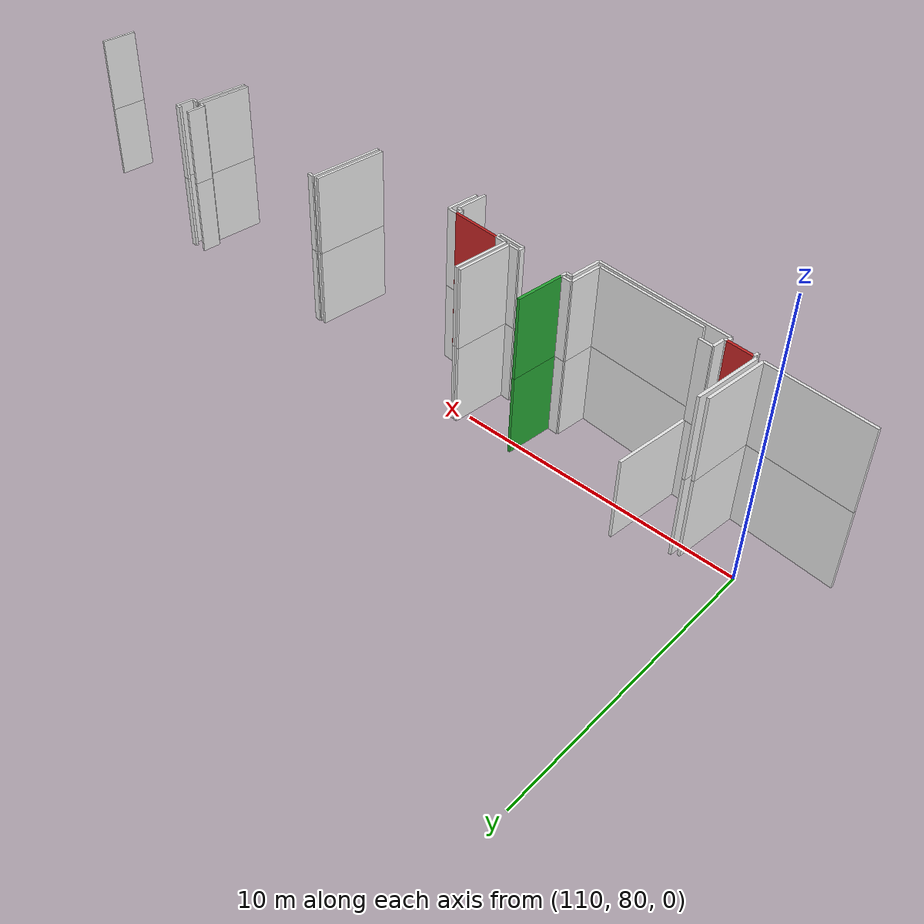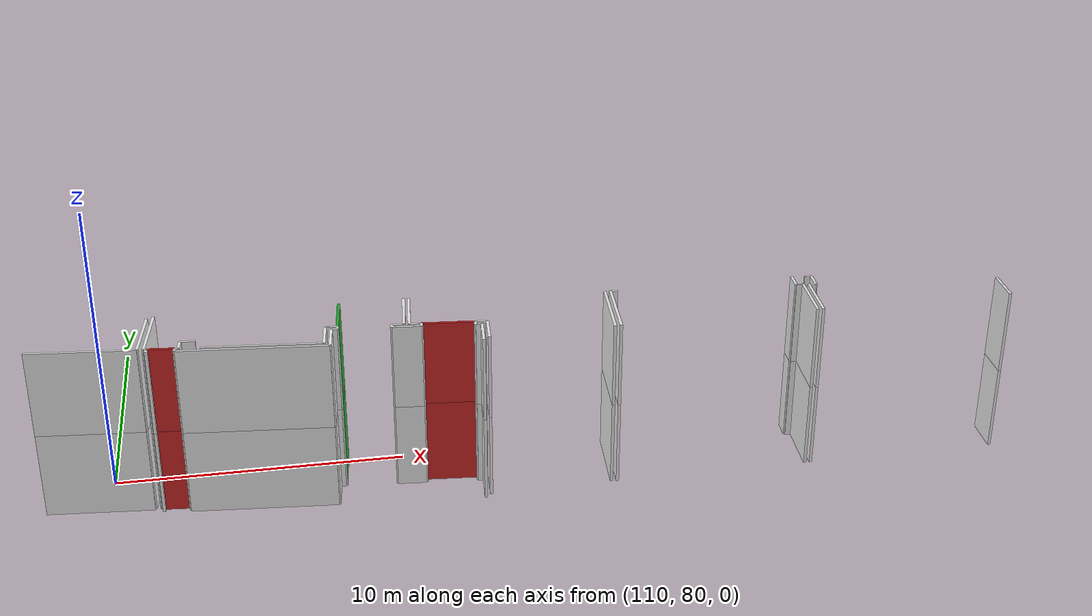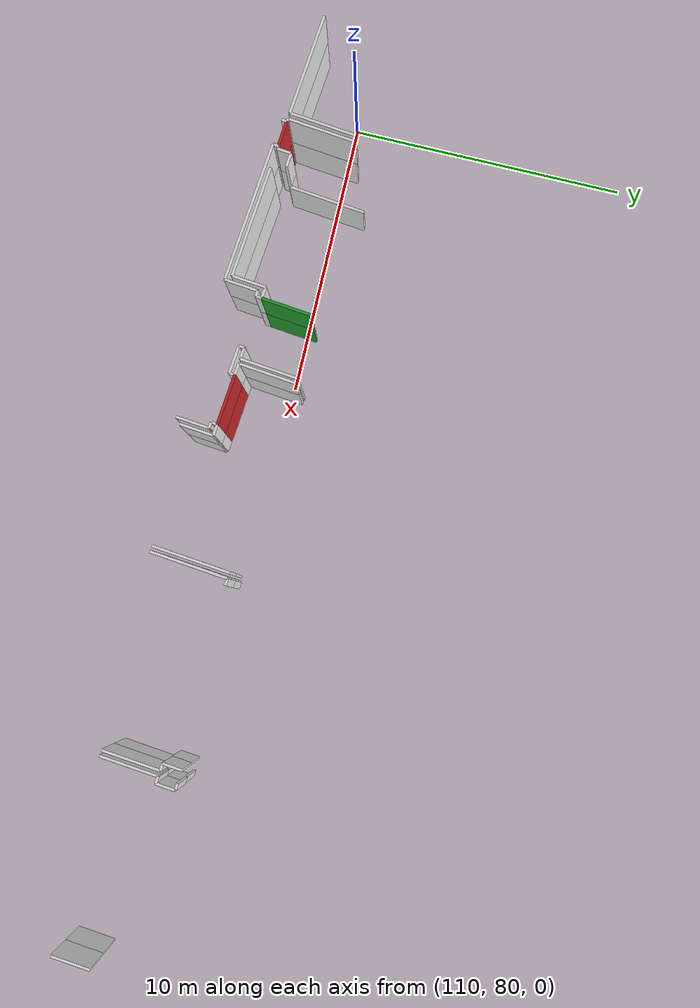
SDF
<sdf version="1.6">
 <world name="default">
  <model name="wall_112.2_77.9_1.5">
   <static>true</static>
   <pose>112.1699999999837 77.92500000004657 1.5 0 0 -0.09966865283695012</pose>
   <link name="link">
    <visual name="visual">
     <geometry><box><size>0.9044888059555555 0.1 3</size></box></geometry>
     <material>
      <script><uri>file://media/materials/scripts/gazebo.material</uri><name>Gazebo/Red</name></script>
     </material>
    </visual>
    <collision name="collision"><geometry><box><size>0.9044888059555555 0.1 3</size></box></geometry></collision>
   </link>
  </model>
  <model name="wall_121.5_78.2_1.5">
   <static>true</static>
   <pose>121.54000000000815 78.20999999996275 1.5 0 0 -0.09966865232787321</pose>
   <link name="link">
    <visual name="visual">
     <geometry><box><size>1.808977611760522 0.1 3</size></box></geometry>
     <material>
      <script><uri>file://media/materials/scripts/gazebo.material</uri><name>Gazebo/Red</name></script>
     </material>
    </visual>
    <collision name="collision"><geometry><box><size>1.808977611760522 0.1 3</size></box></geometry></collision>
   </link>
  </model>
  <model name="wall_118.0_79.5_1.5">
   <static>true</static>
   <pose>117.96999999985565 79.46499999985099 1.5 0 0 1.470574577181901</pose>
   <link name="link">
    <visual name="visual">
     <geometry><box><size>1.799027515083101 0.1 3</size></box></geometry>
     <material>
      <script><uri>file://media/materials/scripts/gazebo.material</uri><name>Gazebo/Green</name></script>
     </material>
    </visual>
    <collision name="collision"><geometry><box><size>1.799027515083101 0.1 3</size></box></geometry></collision>
   </link>
  </model>
  <model name="wall_112.2_77.9_4.5">
   <static>true</static>
   <pose>112.1699999999837 77.92500000004657 4.5 0 0 -0.09966865283695012</pose>
   <link name="link">
    <visual name="visual">
     <geometry><box><size>0.9044888059555555 0.1 3</size></box></geometry>
     <material>
      <script><uri>file://media/materials/scripts/gazebo.material</uri><name>Gazebo/Red</name></script>
     </material>
    </visual>
    <collision name="collision"><geometry><box><size>0.9044888059555555 0.1 3</size></box></geometry></collision>
   </link>
  </model>
  <model name="wall_121.5_78.2_4.5">
   <static>true</static>
   <pose>121.54000000000815 78.20999999996275 4.5 0 0 -0.09966865232787321</pose>
   <link name="link">
    <visual name="visual">
     <geometry><box><size>1.808977611760522 0.1 3</size></box></geometry>
     <material>
      <script><uri>file://media/materials/scripts/gazebo.material</uri><name>Gazebo/Red</name></script>
     </material>
    </visual>
    <collision name="collision"><geometry><box><size>1.808977611760522 0.1 3</size></box></geometry></collision>
   </link>
  </model>
  <model name="wall_118.0_79.5_4.5">
   <static>true</static>
   <pose>117.96999999985565 79.46499999985099 4.5 0 0 1.470574577181901</pose>
   <link name="link">
    <visual name="visual">
     <geometry><box><size>1.799027515083101 0.1 3</size></box></geometry>
     <material>
      <script><uri>file://media/materials/scripts/gazebo.material</uri><name>Gazebo/Green</name></script>
     </material>
    </visual>
    <collision name="collision"><geometry><box><size>1.799027515083101 0.1 3</size></box></geometry></collision>
   </link>
  </model>
  <model name="wall_134.3_78.0_1.5">
   <static>true</static>
   <pose>134.30499999999302 77.95999999996275 1.5 0 0 1.4701757469590804</pose>
   <link name="link">
    <visual name="visual">
     <geometry><box><size>2.090574083904777 0.1 3</size></box></geometry>
     <material>
      <script><uri>file://media/materials/scripts/gazebo.material</uri><name>Gazebo/White</name></script>
     </material>
    </visual>
    <collision name="collision"><geometry><box><size>2.090574083904777 0.1 3</size></box></geometry></collision>
   </link>
  </model>
  <model name="wall_134.5_79.0_1.5">
   <static>true</static>
   <pose>134.5349999999744 78.98500000010245 1.5 0 0 -0.11942892521040878</pose>
   <link name="link">
    <visual name="visual">
     <geometry><box><size>0.2517935662158716 0.1 3</size></box></geometry>
     <material>
      <script><uri>file://media/materials/scripts/gazebo.material</uri><name>Gazebo/White</name></script>
     </material>
    </visual>
    <collision name="collision"><geometry><box><size>0.2517935662158716 0.1 3</size></box></geometry></collision>
   </link>
  </model>
  <model name="wall_134.7_79.3_1.5">
   <static>true</static>
   <pose>134.69499999997788 79.32000000006519 1.5 0 0 1.4711276742543362</pose>
   <link name="link">
    <visual name="visual">
     <geometry><box><size>0.7034912932011471 0.1 3</size></box></geometry>
     <material>
      <script><uri>file://media/materials/scripts/gazebo.material</uri><name>Gazebo/White</name></script>
     </material>
    </visual>
    <collision name="collision"><geometry><box><size>0.7034912932011471 0.1 3</size></box></geometry></collision>
   </link>
  </model>
  <model name="wall_134.6_79.7_1.5">
   <static>true</static>
   <pose>134.60999999998603 79.67999999993481 1.5 0 0 3.0584514216210654</pose>
   <link name="link">
    <visual name="visual">
     <geometry><box><size>0.2408318915681117 0.1 3</size></box></geometry>
     <material>
      <script><uri>file://media/materials/scripts/gazebo.material</uri><name>Gazebo/White</name></script>
     </material>
    </visual>
    <collision name="collision"><geometry><box><size>0.2408318915681117 0.1 3</size></box></geometry></collision>
   </link>
  </model>
  <model name="wall_134.1_78.0_1.5">
   <static>true</static>
   <pose>134.10500000001048 77.97999999998137 1.5 0 0 1.4701757469313783</pose>
   <link name="link">
    <visual name="visual">
     <geometry><box><size>2.0905740839106244 0.1 3</size></box></geometry>
     <material>
      <script><uri>file://media/materials/scripts/gazebo.material</uri><name>Gazebo/White</name></script>
     </material>
    </visual>
    <collision name="collision"><geometry><box><size>2.0905740839106244 0.1 3</size></box></geometry></collision>
   </link>
  </model>
  <model name="wall_134.1_79.0_1.5">
   <static>true</static>
   <pose>134.08500000002095 79.03000000002794 1.5 0 0 3.061762667803524</pose>
   <link name="link">
    <visual name="visual">
     <geometry><box><size>0.25079872408117443 0.1 3</size></box></geometry>
     <material>
      <script><uri>file://media/materials/scripts/gazebo.material</uri><name>Gazebo/White</name></script>
     </material>
    </visual>
    <collision name="collision"><geometry><box><size>0.25079872408117443 0.1 3</size></box></geometry></collision>
   </link>
  </model>
  <model name="wall_134.0_79.4_1.5">
   <static>true</static>
   <pose>133.99500000002445 79.39000000013039 1.5 0 0 1.4711276743202006</pose>
   <link name="link">
    <visual name="visual">
     <geometry><box><size>0.7034912936644975 0.1 3</size></box></geometry>
     <material>
      <script><uri>file://media/materials/scripts/gazebo.material</uri><name>Gazebo/White</name></script>
     </material>
    </visual>
    <collision name="collision"><geometry><box><size>0.7034912936644975 0.1 3</size></box></geometry></collision>
   </link>
  </model>
  <model name="wall_127.6_79.7_1.5">
   <static>true</static>
   <pose>127.55499999999302 79.68500000005588 1.5 0 0 3.0221637265431807</pose>
   <link name="link">
    <visual name="visual">
     <geometry><box><size>0.25179356627135296 0.1 3</size></box></geometry>
     <material>
      <script><uri>file://media/materials/scripts/gazebo.material</uri><name>Gazebo/White</name></script>
     </material>
    </visual>
    <collision name="collision"><geometry><box><size>0.25179356627135296 0.1 3</size></box></geometry></collision>
   </link>
  </model>
  <model name="wall_127.3_78.3_1.5">
   <static>true</static>
   <pose>127.29000000000815 78.31000000005588 1.5 0 0 -1.6711772298577363</pose>
   <link name="link">
    <visual name="visual">
     <geometry><box><size>2.7940651390819315 0.1 3</size></box></geometry>
     <material>
      <script><uri>file://media/materials/scripts/gazebo.material</uri><name>Gazebo/White</name></script>
     </material>
    </visual>
    <collision name="collision"><geometry><box><size>2.7940651390819315 0.1 3</size></box></geometry></collision>
   </link>
  </model>
  <model name="wall_113.4_79.7_1.5">
   <static>true</static>
   <pose>113.40499999999884 79.70999999996275 1.5 0 0 1.4668557173961834</pose>
   <link name="link">
    <visual name="visual">
     <geometry><box><size>2.7950849721319257 0.1 3</size></box></geometry>
     <material>
      <script><uri>file://media/materials/scripts/gazebo.material</uri><name>Gazebo/White</name></script>
     </material>
    </visual>
    <collision name="collision"><geometry><box><size>2.7950849721319257 0.1 3</size></box></geometry></collision>
   </link>
  </model>
  <model name="wall_111.7_79.2_1.5">
   <static>true</static>
   <pose>111.74499999999534 79.22500000009313 1.5 0 0 -1.6708625935702974</pose>
   <link name="link">
    <visual name="visual">
     <geometry><box><size>2.502518731421029 0.1 3</size></box></geometry>
     <material>
      <script><uri>file://media/materials/scripts/gazebo.material</uri><name>Gazebo/White</name></script>
     </material>
    </visual>
    <collision name="collision"><geometry><box><size>2.502518731421029 0.1 3</size></box></geometry></collision>
   </link>
  </model>
  <model name="wall_111.7_78.0_1.5">
   <static>true</static>
   <pose>111.6699999999837 77.97500000009313 1.5 0 0 -0.09966865030117082</pose>
   <link name="link">
    <visual name="visual">
     <geometry><box><size>0.10049875616580058 0.1 3</size></box></geometry>
     <material>
      <script><uri>file://media/materials/scripts/gazebo.material</uri><name>Gazebo/White</name></script>
     </material>
    </visual>
    <collision name="collision"><geometry><box><size>0.10049875616580058 0.1 3</size></box></geometry></collision>
   </link>
  </model>
  <model name="wall_112.7_77.9_1.5">
   <static>true</static>
   <pose>112.6699999999837 77.875 1.5 0 0 -0.09966865030117082</pose>
   <link name="link">
    <visual name="visual">
     <geometry><box><size>0.10049875616580058 0.1 3</size></box></geometry>
     <material>
      <script><uri>file://media/materials/scripts/gazebo.material</uri><name>Gazebo/White</name></script>
     </material>
    </visual>
    <collision name="collision"><geometry><box><size>0.10049875616580058 0.1 3</size></box></geometry></collision>
   </link>
  </model>
  <model name="wall_112.7_78.1_1.5">
   <static>true</static>
   <pose>112.74499999999534 78.12000000011176 1.5 0 0 1.4711276742115245</pose>
   <link name="link">
    <visual name="visual">
     <geometry><box><size>0.502493781060678 0.1 3</size></box></geometry>
     <material>
      <script><uri>file://media/materials/scripts/gazebo.material</uri><name>Gazebo/White</name></script>
     </material>
    </visual>
    <collision name="collision"><geometry><box><size>0.502493781060678 0.1 3</size></box></geometry></collision>
   </link>
  </model>
  <model name="wall_113.0_78.3_1.5">
   <static>true</static>
   <pose>113.01500000001397 78.34499999997206 1.5 0 0 -0.1016888523293181</pose>
   <link name="link">
    <visual name="visual">
     <geometry><box><size>0.49254441426008755 0.1 3</size></box></geometry>
     <material>
      <script><uri>file://media/materials/scripts/gazebo.material</uri><name>Gazebo/White</name></script>
     </material>
    </visual>
    <collision name="collision"><geometry><box><size>0.49254441426008755 0.1 3</size></box></geometry></collision>
   </link>
  </model>
  <model name="wall_109.6_78.2_1.5">
   <static>true</static>
   <pose>109.61999999999534 78.17999999993481 1.5 0 0 -0.1002217497450038</pose>
   <link name="link">
    <visual name="visual">
     <geometry><box><size>3.5980550300969623 0.1 3</size></box></geometry>
     <material>
      <script><uri>file://media/materials/scripts/gazebo.material</uri><name>Gazebo/White</name></script>
     </material>
    </visual>
    <collision name="collision"><geometry><box><size>3.5980550300969623 0.1 3</size></box></geometry></collision>
   </link>
  </model>
  <model name="wall_111.5_79.2_1.5">
   <static>true</static>
   <pose>111.52999999999884 79.1699999999255 1.5 0 0 1.4685896086605021</pose>
   <link name="link">
    <visual name="visual">
     <geometry><box><size>2.3522754939262738 0.1 3</size></box></geometry>
     <material>
      <script><uri>file://media/materials/scripts/gazebo.material</uri><name>Gazebo/White</name></script>
     </material>
    </visual>
    <collision name="collision"><geometry><box><size>2.3522754939262738 0.1 3</size></box></geometry></collision>
   </link>
  </model>
  <model name="wall_120.4_78.3_1.5">
   <static>true</static>
   <pose>120.44000000000233 78.31999999983236 1.5 0 0 -0.09966865257760905</pose>
   <link name="link">
    <visual name="visual">
     <geometry><box><size>0.40199502487170996 0.1 3</size></box></geometry>
     <material>
      <script><uri>file://media/materials/scripts/gazebo.material</uri><name>Gazebo/White</name></script>
     </material>
    </visual>
    <collision name="collision"><geometry><box><size>0.40199502487170996 0.1 3</size></box></geometry></collision>
   </link>
  </model>
  <model name="wall_122.6_78.1_1.5">
   <static>true</static>
   <pose>122.63500000000931 78.10000000009313 1.5 0 0 -0.10220671819814384</pose>
   <link name="link">
    <visual name="visual">
     <geometry><box><size>0.392045915695951 0.1 3</size></box></geometry>
     <material>
      <script><uri>file://media/materials/scripts/gazebo.material</uri><name>Gazebo/White</name></script>
     </material>
    </visual>
    <collision name="collision"><geometry><box><size>0.392045915695951 0.1 3</size></box></geometry></collision>
   </link>
  </model>
  <model name="wall_122.8_77.5_1.5">
   <static>true</static>
   <pose>122.77000000001863 77.47500000009313 1.5 0 0 -1.6696466488623756</pose>
   <link name="link">
    <visual name="visual">
     <geometry><box><size>1.2159358535337013 0.1 3</size></box></geometry>
     <material>
      <script><uri>file://media/materials/scripts/gazebo.material</uri><name>Gazebo/White</name></script>
     </material>
    </visual>
    <collision name="collision"><geometry><box><size>1.2159358535337013 0.1 3</size></box></geometry></collision>
   </link>
  </model>
  <model name="wall_127.1_78.3_1.5">
   <static>true</static>
   <pose>127.08999999999651 78.3300000000745 1.5 0 0 1.470415423732057</pose>
   <link name="link">
    <visual name="visual">
     <geometry><box><size>2.7940651390819315 0.1 3</size></box></geometry>
     <material>
      <script><uri>file://media/materials/scripts/gazebo.material</uri><name>Gazebo/White</name></script>
     </material>
    </visual>
    <collision name="collision"><geometry><box><size>2.7940651390819315 0.1 3</size></box></geometry></collision>
   </link>
  </model>
  <model name="wall_120.3_79.4_1.5">
   <static>true</static>
   <pose>120.34500000000116 79.36999999987893 1.5 0 0 -1.672387129737302</pose>
   <link name="link">
    <visual name="visual">
     <geometry><box><size>2.070676218108235 0.1 3</size></box></geometry>
     <material>
      <script><uri>file://media/materials/scripts/gazebo.material</uri><name>Gazebo/White</name></script>
     </material>
    </visual>
    <collision name="collision"><geometry><box><size>2.070676218108235 0.1 3</size></box></geometry></collision>
   </link>
  </model>
  <model name="wall_119.9_78.4_1.5">
   <static>true</static>
   <pose>119.86999999999534 78.37000000011176 1.5 0 0 -0.09966865257760905</pose>
   <link name="link">
    <visual name="visual">
     <geometry><box><size>0.40199502487170996 0.1 3</size></box></geometry>
     <material>
      <script><uri>file://media/materials/scripts/gazebo.material</uri><name>Gazebo/White</name></script>
     </material>
    </visual>
    <collision name="collision"><geometry><box><size>0.40199502487170996 0.1 3</size></box></geometry></collision>
   </link>
  </model>
  <model name="wall_120.2_79.4_1.5">
   <static>true</static>
   <pose>120.17500000001746 79.38500000000931 1.5 0 0 1.469692955040446</pose>
   <link name="link">
    <visual name="visual">
     <geometry><box><size>2.0806249059632975 0.1 3</size></box></geometry>
     <material>
      <script><uri>file://media/materials/scripts/gazebo.material</uri><name>Gazebo/White</name></script>
     </material>
    </visual>
    <collision name="collision"><geometry><box><size>2.0806249059632975 0.1 3</size></box></geometry></collision>
   </link>
  </model>
  <model name="wall_115.4_77.6_1.5">
   <static>true</static>
   <pose>115.38499999998021 77.5999999998603 1.5 0 0 -0.10092178464365997</pose>
   <link name="link">
    <visual name="visual">
     <geometry><box><size>3.9702015062232627 0.1 3</size></box></geometry>
     <material>
      <script><uri>file://media/materials/scripts/gazebo.material</uri><name>Gazebo/White</name></script>
     </material>
    </visual>
    <collision name="collision"><geometry><box><size>3.9702015062232627 0.1 3</size></box></geometry></collision>
   </link>
  </model>
  <model name="wall_117.4_78.0_1.5">
   <static>true</static>
   <pose>117.4199999999837 78.00499999988824 1.5 0 0 1.4719460047274175</pose>
   <link name="link">
    <visual name="visual">
     <geometry><box><size>1.2159358535337013 0.1 3</size></box></geometry>
     <material>
      <script><uri>file://media/materials/scripts/gazebo.material</uri><name>Gazebo/White</name></script>
     </material>
    </visual>
    <collision name="collision"><geometry><box><size>1.2159358535337013 0.1 3</size></box></geometry></collision>
   </link>
  </model>
  <model name="wall_117.7_78.6_1.5">
   <static>true</static>
   <pose>117.67999999999302 78.58999999985099 1.5 0 0 -0.09966865257760905</pose>
   <link name="link">
    <visual name="visual">
     <geometry><box><size>0.40199502487170996 0.1 3</size></box></geometry>
     <material>
      <script><uri>file://media/materials/scripts/gazebo.material</uri><name>Gazebo/White</name></script>
     </material>
    </visual>
    <collision name="collision"><geometry><box><size>0.40199502487170996 0.1 3</size></box></geometry></collision>
   </link>
  </model>
  <model name="wall_141.1_77.6_1.5">
   <static>true</static>
   <pose>141.07000000000698 77.625 1.5 0 0 -1.671177229911867</pose>
   <link name="link">
    <visual name="visual">
     <geometry><box><size>1.3970325690805652 0.1 3</size></box></geometry>
     <material>
      <script><uri>file://media/materials/scripts/gazebo.material</uri><name>Gazebo/White</name></script>
     </material>
    </visual>
    <collision name="collision"><geometry><box><size>1.3970325690805652 0.1 3</size></box></geometry></collision>
   </link>
  </model>
  <model name="wall_122.6_77.3_1.5">
   <static>true</static>
   <pose>122.55999999999767 77.28499999991618 1.5 0 0 1.470295727739453</pose>
   <link name="link">
    <visual name="visual">
     <geometry><box><size>1.1960351164852516 0.1 3</size></box></geometry>
     <material>
      <script><uri>file://media/materials/scripts/gazebo.material</uri><name>Gazebo/White</name></script>
     </material>
    </visual>
    <collision name="collision"><geometry><box><size>1.1960351164852516 0.1 3</size></box></geometry></collision>
   </link>
  </model>
  <model name="wall_122.5_77.9_1.5">
   <static>true</static>
   <pose>122.51499999998487 77.88999999989755 1.5 0 0 3.0466409471685547</pose>
   <link name="link">
    <visual name="visual">
     <geometry><box><size>0.21095023111991618 0.1 3</size></box></geometry>
     <material>
      <script><uri>file://media/materials/scripts/gazebo.material</uri><name>Gazebo/White</name></script>
     </material>
    </visual>
    <collision name="collision"><geometry><box><size>0.21095023111991618 0.1 3</size></box></geometry></collision>
   </link>
  </model>
  <model name="wall_122.4_78.0_1.5">
   <static>true</static>
   <pose>122.42499999998836 78.01000000000931 1.5 0 0 1.4352686128093959</pose>
   <link name="link">
    <visual name="visual">
     <geometry><box><size>0.22203603331853233 0.1 3</size></box></geometry>
     <material>
      <script><uri>file://media/materials/scripts/gazebo.material</uri><name>Gazebo/White</name></script>
     </material>
    </visual>
    <collision name="collision"><geometry><box><size>0.22203603331853233 0.1 3</size></box></geometry></collision>
   </link>
  </model>
  <model name="wall_120.6_78.2_1.5">
   <static>true</static>
   <pose>120.64000000001397 78.19999999995343 1.5 0 0 -1.5707963267948966</pose>
   <link name="link">
    <visual name="visual">
     <geometry><box><size>0.19999999972060323 0.1 3</size></box></geometry>
     <material>
      <script><uri>file://media/materials/scripts/gazebo.material</uri><name>Gazebo/White</name></script>
     </material>
    </visual>
    <collision name="collision"><geometry><box><size>0.19999999972060323 0.1 3</size></box></geometry></collision>
   </link>
  </model>
  <model name="wall_120.1_78.2_1.5">
   <static>true</static>
   <pose>120.14500000001863 78.1500000001397 1.5 0 0 3.040924001337901</pose>
   <link name="link">
    <visual name="visual">
     <geometry><box><size>0.9950376877285535 0.1 3</size></box></geometry>
     <material>
      <script><uri>file://media/materials/scripts/gazebo.material</uri><name>Gazebo/White</name></script>
     </material>
    </visual>
    <collision name="collision"><geometry><box><size>0.9950376877285535 0.1 3</size></box></geometry></collision>
   </link>
  </model>
  <model name="wall_119.7_78.3_1.5">
   <static>true</static>
   <pose>119.66000000000349 78.29500000015832 1.5 0 0 1.4659193882400832</pose>
   <link name="link">
    <visual name="visual">
     <geometry><box><size>0.19104973168571213 0.1 3</size></box></geometry>
     <material>
      <script><uri>file://media/materials/scripts/gazebo.material</uri><name>Gazebo/White</name></script>
     </material>
    </visual>
    <collision name="collision"><geometry><box><size>0.19104973168571213 0.1 3</size></box></geometry></collision>
   </link>
  </model>
  <model name="wall_117.9_78.5_1.5">
   <static>true</static>
   <pose>117.86999999999534 78.46499999985099 1.5 0 0 -1.665748033242296</pose>
   <link name="link">
    <visual name="visual">
     <geometry><box><size>0.21095023106197072 0.1 3</size></box></geometry>
     <material>
      <script><uri>file://media/materials/scripts/gazebo.material</uri><name>Gazebo/White</name></script>
     </material>
    </visual>
    <collision name="collision"><geometry><box><size>0.21095023106197072 0.1 3</size></box></geometry></collision>
   </link>
  </model>
  <model name="wall_117.8_78.4_1.5">
   <static>true</static>
   <pose>117.75999999998021 78.36999999987893 1.5 0 0 3.0419240010121844</pose>
   <link name="link">
    <visual name="visual">
     <geometry><box><size>0.20099751243585498 0.1 3</size></box></geometry>
     <material>
      <script><uri>file://media/materials/scripts/gazebo.material</uri><name>Gazebo/White</name></script>
     </material>
    </visual>
    <collision name="collision"><geometry><box><size>0.20099751243585498 0.1 3</size></box></geometry></collision>
   </link>
  </model>
  <model name="wall_117.6_77.8_1.5">
   <static>true</static>
   <pose>117.59999999997672 77.78499999991618 1.5 0 0 -1.6712969258503403</pose>
   <link name="link">
    <visual name="visual">
     <geometry><box><size>1.1960351164852516 0.1 3</size></box></geometry>
     <material>
      <script><uri>file://media/materials/scripts/gazebo.material</uri><name>Gazebo/White</name></script>
     </material>
    </visual>
    <collision name="collision"><geometry><box><size>1.1960351164852516 0.1 3</size></box></geometry></collision>
   </link>
  </model>
  <model name="wall_115.1_77.4_1.5">
   <static>true</static>
   <pose>115.06999999997788 77.43999999994412 1.5 0 0 3.0407215968685284</pose>
   <link name="link">
    <visual name="visual">
     <geometry><box><size>4.965239168461375 0.1 3</size></box></geometry>
     <material>
      <script><uri>file://media/materials/scripts/gazebo.material</uri><name>Gazebo/White</name></script>
     </material>
    </visual>
    <collision name="collision"><geometry><box><size>4.965239168461375 0.1 3</size></box></geometry></collision>
   </link>
  </model>
  <model name="wall_112.6_77.8_1.5">
   <static>true</static>
   <pose>112.60999999998603 77.78499999991618 1.5 0 0 1.4659193879370842</pose>
   <link name="link">
    <visual name="visual">
     <geometry><box><size>0.19104973169180559 0.1 3</size></box></geometry>
     <material>
      <script><uri>file://media/materials/scripts/gazebo.material</uri><name>Gazebo/White</name></script>
     </material>
    </visual>
    <collision name="collision"><geometry><box><size>0.19104973169180559 0.1 3</size></box></geometry></collision>
   </link>
  </model>
  <model name="wall_111.7_77.9_1.5">
   <static>true</static>
   <pose>111.70999999999185 77.875 1.5 0 0 -1.6756732650945534</pose>
   <link name="link">
    <visual name="visual">
     <geometry><box><size>0.19104973214881482 0.1 3</size></box></geometry>
     <material>
      <script><uri>file://media/materials/scripts/gazebo.material</uri><name>Gazebo/White</name></script>
     </material>
    </visual>
    <collision name="collision"><geometry><box><size>0.19104973214881482 0.1 3</size></box></geometry></collision>
   </link>
  </model>
  <model name="wall_134.3_78.0_4.5">
   <static>true</static>
   <pose>134.30499999999302 77.95999999996275 4.5 0 0 1.4701757469590804</pose>
   <link name="link">
    <visual name="visual">
     <geometry><box><size>2.090574083904777 0.1 3</size></box></geometry>
     <material>
      <script><uri>file://media/materials/scripts/gazebo.material</uri><name>Gazebo/White</name></script>
     </material>
    </visual>
    <collision name="collision"><geometry><box><size>2.090574083904777 0.1 3</size></box></geometry></collision>
   </link>
  </model>
  <model name="wall_134.5_79.0_4.5">
   <static>true</static>
   <pose>134.5349999999744 78.98500000010245 4.5 0 0 -0.11942892521040878</pose>
   <link name="link">
    <visual name="visual">
     <geometry><box><size>0.2517935662158716 0.1 3</size></box></geometry>
     <material>
      <script><uri>file://media/materials/scripts/gazebo.material</uri><name>Gazebo/White</name></script>
     </material>
    </visual>
    <collision name="collision"><geometry><box><size>0.2517935662158716 0.1 3</size></box></geometry></collision>
   </link>
  </model>
  <model name="wall_134.7_79.3_4.5">
   <static>true</static>
   <pose>134.69499999997788 79.32000000006519 4.5 0 0 1.4711276742543362</pose>
   <link name="link">
    <visual name="visual">
     <geometry><box><size>0.7034912932011471 0.1 3</size></box></geometry>
     <material>
      <script><uri>file://media/materials/scripts/gazebo.material</uri><name>Gazebo/White</name></script>
     </material>
    </visual>
    <collision name="collision"><geometry><box><size>0.7034912932011471 0.1 3</size></box></geometry></collision>
   </link>
  </model>
  <model name="wall_134.6_79.7_4.5">
   <static>true</static>
   <pose>134.60999999998603 79.67999999993481 4.5 0 0 3.0584514216210654</pose>
   <link name="link">
    <visual name="visual">
     <geometry><box><size>0.2408318915681117 0.1 3</size></box></geometry>
     <material>
      <script><uri>file://media/materials/scripts/gazebo.material</uri><name>Gazebo/White</name></script>
     </material>
    </visual>
    <collision name="collision"><geometry><box><size>0.2408318915681117 0.1 3</size></box></geometry></collision>
   </link>
  </model>
  <model name="wall_134.1_78.0_4.5">
   <static>true</static>
   <pose>134.10500000001048 77.97999999998137 4.5 0 0 1.4701757469313783</pose>
   <link name="link">
    <visual name="visual">
     <geometry><box><size>2.0905740839106244 0.1 3</size></box></geometry>
     <material>
      <script><uri>file://media/materials/scripts/gazebo.material</uri><name>Gazebo/White</name></script>
     </material>
    </visual>
    <collision name="collision"><geometry><box><size>2.0905740839106244 0.1 3</size></box></geometry></collision>
   </link>
  </model>
  <model name="wall_134.1_79.0_4.5">
   <static>true</static>
   <pose>134.08500000002095 79.03000000002794 4.5 0 0 3.061762667803524</pose>
   <link name="link">
    <visual name="visual">
     <geometry><box><size>0.25079872408117443 0.1 3</size></box></geometry>
     <material>
      <script><uri>file://media/materials/scripts/gazebo.material</uri><name>Gazebo/White</name></script>
     </material>
    </visual>
    <collision name="collision"><geometry><box><size>0.25079872408117443 0.1 3</size></box></geometry></collision>
   </link>
  </model>
  <model name="wall_134.0_79.4_4.5">
   <static>true</static>
   <pose>133.99500000002445 79.39000000013039 4.5 0 0 1.4711276743202006</pose>
   <link name="link">
    <visual name="visual">
     <geometry><box><size>0.7034912936644975 0.1 3</size></box></geometry>
     <material>
      <script><uri>file://media/materials/scripts/gazebo.material</uri><name>Gazebo/White</name></script>
     </material>
    </visual>
    <collision name="collision"><geometry><box><size>0.7034912936644975 0.1 3</size></box></geometry></collision>
   </link>
  </model>
  <model name="wall_127.6_79.7_4.5">
   <static>true</static>
   <pose>127.55499999999302 79.68500000005588 4.5 0 0 3.0221637265431807</pose>
   <link name="link">
    <visual name="visual">
     <geometry><box><size>0.25179356627135296 0.1 3</size></box></geometry>
     <material>
      <script><uri>file://media/materials/scripts/gazebo.material</uri><name>Gazebo/White</name></script>
     </material>
    </visual>
    <collision name="collision"><geometry><box><size>0.25179356627135296 0.1 3</size></box></geometry></collision>
   </link>
  </model>
  <model name="wall_127.3_78.3_4.5">
   <static>true</static>
   <pose>127.29000000000815 78.31000000005588 4.5 0 0 -1.6711772298577363</pose>
   <link name="link">
    <visual name="visual">
     <geometry><box><size>2.7940651390819315 0.1 3</size></box></geometry>
     <material>
      <script><uri>file://media/materials/scripts/gazebo.material</uri><name>Gazebo/White</name></script>
     </material>
    </visual>
    <collision name="collision"><geometry><box><size>2.7940651390819315 0.1 3</size></box></geometry></collision>
   </link>
  </model>
  <model name="wall_111.7_79.2_4.5">
   <static>true</static>
   <pose>111.74499999999534 79.22500000009313 4.5 0 0 -1.6708625935702974</pose>
   <link name="link">
    <visual name="visual">
     <geometry><box><size>2.502518731421029 0.1 3</size></box></geometry>
     <material>
      <script><uri>file://media/materials/scripts/gazebo.material</uri><name>Gazebo/White</name></script>
     </material>
    </visual>
    <collision name="collision"><geometry><box><size>2.502518731421029 0.1 3</size></box></geometry></collision>
   </link>
  </model>
  <model name="wall_111.7_78.0_4.5">
   <static>true</static>
   <pose>111.6699999999837 77.97500000009313 4.5 0 0 -0.09966865030117082</pose>
   <link name="link">
    <visual name="visual">
     <geometry><box><size>0.10049875616580058 0.1 3</size></box></geometry>
     <material>
      <script><uri>file://media/materials/scripts/gazebo.material</uri><name>Gazebo/White</name></script>
     </material>
    </visual>
    <collision name="collision"><geometry><box><size>0.10049875616580058 0.1 3</size></box></geometry></collision>
   </link>
  </model>
  <model name="wall_112.7_77.9_4.5">
   <static>true</static>
   <pose>112.6699999999837 77.875 4.5 0 0 -0.09966865030117082</pose>
   <link name="link">
    <visual name="visual">
     <geometry><box><size>0.10049875616580058 0.1 3</size></box></geometry>
     <material>
      <script><uri>file://media/materials/scripts/gazebo.material</uri><name>Gazebo/White</name></script>
     </material>
    </visual>
    <collision name="collision"><geometry><box><size>0.10049875616580058 0.1 3</size></box></geometry></collision>
   </link>
  </model>
  <model name="wall_112.7_78.1_4.5">
   <static>true</static>
   <pose>112.74499999999534 78.12000000011176 4.5 0 0 1.4711276742115245</pose>
   <link name="link">
    <visual name="visual">
     <geometry><box><size>0.502493781060678 0.1 3</size></box></geometry>
     <material>
      <script><uri>file://media/materials/scripts/gazebo.material</uri><name>Gazebo/White</name></script>
     </material>
    </visual>
    <collision name="collision"><geometry><box><size>0.502493781060678 0.1 3</size></box></geometry></collision>
   </link>
  </model>
  <model name="wall_113.0_78.3_4.5">
   <static>true</static>
   <pose>113.01500000001397 78.34499999997206 4.5 0 0 -0.1016888523293181</pose>
   <link name="link">
    <visual name="visual">
     <geometry><box><size>0.49254441426008755 0.1 3</size></box></geometry>
     <material>
      <script><uri>file://media/materials/scripts/gazebo.material</uri><name>Gazebo/White</name></script>
     </material>
    </visual>
    <collision name="collision"><geometry><box><size>0.49254441426008755 0.1 3</size></box></geometry></collision>
   </link>
  </model>
  <model name="wall_109.6_78.2_4.5">
   <static>true</static>
   <pose>109.61999999999534 78.17999999993481 4.5 0 0 -0.1002217497450038</pose>
   <link name="link">
    <visual name="visual">
     <geometry><box><size>3.5980550300969623 0.1 3</size></box></geometry>
     <material>
      <script><uri>file://media/materials/scripts/gazebo.material</uri><name>Gazebo/White</name></script>
     </material>
    </visual>
    <collision name="collision"><geometry><box><size>3.5980550300969623 0.1 3</size></box></geometry></collision>
   </link>
  </model>
  <model name="wall_111.5_79.2_4.5">
   <static>true</static>
   <pose>111.52999999999884 79.1699999999255 4.5 0 0 1.4685896086605021</pose>
   <link name="link">
    <visual name="visual">
     <geometry><box><size>2.3522754939262738 0.1 3</size></box></geometry>
     <material>
      <script><uri>file://media/materials/scripts/gazebo.material</uri><name>Gazebo/White</name></script>
     </material>
    </visual>
    <collision name="collision"><geometry><box><size>2.3522754939262738 0.1 3</size></box></geometry></collision>
   </link>
  </model>
  <model name="wall_120.4_78.3_4.5">
   <static>true</static>
   <pose>120.44000000000233 78.31999999983236 4.5 0 0 -0.09966865257760905</pose>
   <link name="link">
    <visual name="visual">
     <geometry><box><size>0.40199502487170996 0.1 3</size></box></geometry>
     <material>
      <script><uri>file://media/materials/scripts/gazebo.material</uri><name>Gazebo/White</name></script>
     </material>
    </visual>
    <collision name="collision"><geometry><box><size>0.40199502487170996 0.1 3</size></box></geometry></collision>
   </link>
  </model>
  <model name="wall_122.6_78.1_4.5">
   <static>true</static>
   <pose>122.63500000000931 78.10000000009313 4.5 0 0 -0.10220671819814384</pose>
   <link name="link">
    <visual name="visual">
     <geometry><box><size>0.392045915695951 0.1 3</size></box></geometry>
     <material>
      <script><uri>file://media/materials/scripts/gazebo.material</uri><name>Gazebo/White</name></script>
     </material>
    </visual>
    <collision name="collision"><geometry><box><size>0.392045915695951 0.1 3</size></box></geometry></collision>
   </link>
  </model>
  <model name="wall_122.8_77.5_4.5">
   <static>true</static>
   <pose>122.77000000001863 77.47500000009313 4.5 0 0 -1.6696466488623756</pose>
   <link name="link">
    <visual name="visual">
     <geometry><box><size>1.2159358535337013 0.1 3</size></box></geometry>
     <material>
      <script><uri>file://media/materials/scripts/gazebo.material</uri><name>Gazebo/White</name></script>
     </material>
    </visual>
    <collision name="collision"><geometry><box><size>1.2159358535337013 0.1 3</size></box></geometry></collision>
   </link>
  </model>
  <model name="wall_127.1_78.3_4.5">
   <static>true</static>
   <pose>127.08999999999651 78.3300000000745 4.5 0 0 1.470415423732057</pose>
   <link name="link">
    <visual name="visual">
     <geometry><box><size>2.7940651390819315 0.1 3</size></box></geometry>
     <material>
      <script><uri>file://media/materials/scripts/gazebo.material</uri><name>Gazebo/White</name></script>
     </material>
    </visual>
    <collision name="collision"><geometry><box><size>2.7940651390819315 0.1 3</size></box></geometry></collision>
   </link>
  </model>
  <model name="wall_120.3_79.4_4.5">
   <static>true</static>
   <pose>120.34500000000116 79.36999999987893 4.5 0 0 -1.672387129737302</pose>
   <link name="link">
    <visual name="visual">
     <geometry><box><size>2.070676218108235 0.1 3</size></box></geometry>
     <material>
      <script><uri>file://media/materials/scripts/gazebo.material</uri><name>Gazebo/White</name></script>
     </material>
    </visual>
    <collision name="collision"><geometry><box><size>2.070676218108235 0.1 3</size></box></geometry></collision>
   </link>
  </model>
  <model name="wall_119.9_78.4_4.5">
   <static>true</static>
   <pose>119.86999999999534 78.37000000011176 4.5 0 0 -0.09966865257760905</pose>
   <link name="link">
    <visual name="visual">
     <geometry><box><size>0.40199502487170996 0.1 3</size></box></geometry>
     <material>
      <script><uri>file://media/materials/scripts/gazebo.material</uri><name>Gazebo/White</name></script>
     </material>
    </visual>
    <collision name="collision"><geometry><box><size>0.40199502487170996 0.1 3</size></box></geometry></collision>
   </link>
  </model>
  <model name="wall_120.2_79.4_4.5">
   <static>true</static>
   <pose>120.17500000001746 79.38500000000931 4.5 0 0 1.469692955040446</pose>
   <link name="link">
    <visual name="visual">
     <geometry><box><size>2.0806249059632975 0.1 3</size></box></geometry>
     <material>
      <script><uri>file://media/materials/scripts/gazebo.material</uri><name>Gazebo/White</name></script>
     </material>
    </visual>
    <collision name="collision"><geometry><box><size>2.0806249059632975 0.1 3</size></box></geometry></collision>
   </link>
  </model>
  <model name="wall_115.4_77.6_4.5">
   <static>true</static>
   <pose>115.38499999998021 77.5999999998603 4.5 0 0 -0.10092178464365997</pose>
   <link name="link">
    <visual name="visual">
     <geometry><box><size>3.9702015062232627 0.1 3</size></box></geometry>
     <material>
      <script><uri>file://media/materials/scripts/gazebo.material</uri><name>Gazebo/White</name></script>
     </material>
    </visual>
    <collision name="collision"><geometry><box><size>3.9702015062232627 0.1 3</size></box></geometry></collision>
   </link>
  </model>
  <model name="wall_117.4_78.0_4.5">
   <static>true</static>
   <pose>117.4199999999837 78.00499999988824 4.5 0 0 1.4719460047274175</pose>
   <link name="link">
    <visual name="visual">
     <geometry><box><size>1.2159358535337013 0.1 3</size></box></geometry>
     <material>
      <script><uri>file://media/materials/scripts/gazebo.material</uri><name>Gazebo/White</name></script>
     </material>
    </visual>
    <collision name="collision"><geometry><box><size>1.2159358535337013 0.1 3</size></box></geometry></collision>
   </link>
  </model>
  <model name="wall_117.7_78.6_4.5">
   <static>true</static>
   <pose>117.67999999999302 78.58999999985099 4.5 0 0 -0.09966865257760905</pose>
   <link name="link">
    <visual name="visual">
     <geometry><box><size>0.40199502487170996 0.1 3</size></box></geometry>
     <material>
      <script><uri>file://media/materials/scripts/gazebo.material</uri><name>Gazebo/White</name></script>
     </material>
    </visual>
    <collision name="collision"><geometry><box><size>0.40199502487170996 0.1 3</size></box></geometry></collision>
   </link>
  </model>
  <model name="wall_141.1_77.6_4.5">
   <static>true</static>
   <pose>141.07000000000698 77.625 4.5 0 0 -1.671177229911867</pose>
   <link name="link">
    <visual name="visual">
     <geometry><box><size>1.3970325690805652 0.1 3</size></box></geometry>
     <material>
      <script><uri>file://media/materials/scripts/gazebo.material</uri><name>Gazebo/White</name></script>
     </material>
    </visual>
    <collision name="collision"><geometry><box><size>1.3970325690805652 0.1 3</size></box></geometry></collision>
   </link>
  </model>
  <model name="wall_122.6_77.3_4.5">
   <static>true</static>
   <pose>122.55999999999767 77.28499999991618 4.5 0 0 1.470295727739453</pose>
   <link name="link">
    <visual name="visual">
     <geometry><box><size>1.1960351164852516 0.1 3</size></box></geometry>
     <material>
      <script><uri>file://media/materials/scripts/gazebo.material</uri><name>Gazebo/White</name></script>
     </material>
    </visual>
    <collision name="collision"><geometry><box><size>1.1960351164852516 0.1 3</size></box></geometry></collision>
   </link>
  </model>
  <model name="wall_122.5_77.9_4.5">
   <static>true</static>
   <pose>122.51499999998487 77.88999999989755 4.5 0 0 3.0466409471685547</pose>
   <link name="link">
    <visual name="visual">
     <geometry><box><size>0.21095023111991618 0.1 3</size></box></geometry>
     <material>
      <script><uri>file://media/materials/scripts/gazebo.material</uri><name>Gazebo/White</name></script>
     </material>
    </visual>
    <collision name="collision"><geometry><box><size>0.21095023111991618 0.1 3</size></box></geometry></collision>
   </link>
  </model>
  <model name="wall_122.4_78.0_4.5">
   <static>true</static>
   <pose>122.42499999998836 78.01000000000931 4.5 0 0 1.4352686128093959</pose>
   <link name="link">
    <visual name="visual">
     <geometry><box><size>0.22203603331853233 0.1 3</size></box></geometry>
     <material>
      <script><uri>file://media/materials/scripts/gazebo.material</uri><name>Gazebo/White</name></script>
     </material>
    </visual>
    <collision name="collision"><geometry><box><size>0.22203603331853233 0.1 3</size></box></geometry></collision>
   </link>
  </model>
  <model name="wall_120.6_78.2_4.5">
   <static>true</static>
   <pose>120.64000000001397 78.19999999995343 4.5 0 0 -1.5707963267948966</pose>
   <link name="link">
    <visual name="visual">
     <geometry><box><size>0.19999999972060323 0.1 3</size></box></geometry>
     <material>
      <script><uri>file://media/materials/scripts/gazebo.material</uri><name>Gazebo/White</name></script>
     </material>
    </visual>
    <collision name="collision"><geometry><box><size>0.19999999972060323 0.1 3</size></box></geometry></collision>
   </link>
  </model>
  <model name="wall_120.1_78.2_4.5">
   <static>true</static>
   <pose>120.14500000001863 78.1500000001397 4.5 0 0 3.040924001337901</pose>
   <link name="link">
    <visual name="visual">
     <geometry><box><size>0.9950376877285535 0.1 3</size></box></geometry>
     <material>
      <script><uri>file://media/materials/scripts/gazebo.material</uri><name>Gazebo/White</name></script>
     </material>
    </visual>
    <collision name="collision"><geometry><box><size>0.9950376877285535 0.1 3</size></box></geometry></collision>
   </link>
  </model>
  <model name="wall_119.7_78.3_4.5">
   <static>true</static>
   <pose>119.66000000000349 78.29500000015832 4.5 0 0 1.4659193882400832</pose>
   <link name="link">
    <visual name="visual">
     <geometry><box><size>0.19104973168571213 0.1 3</size></box></geometry>
     <material>
      <script><uri>file://media/materials/scripts/gazebo.material</uri><name>Gazebo/White</name></script>
     </material>
    </visual>
    <collision name="collision"><geometry><box><size>0.19104973168571213 0.1 3</size></box></geometry></collision>
   </link>
  </model>
  <model name="wall_117.9_78.5_4.5">
   <static>true</static>
   <pose>117.86999999999534 78.46499999985099 4.5 0 0 -1.665748033242296</pose>
   <link name="link">
    <visual name="visual">
     <geometry><box><size>0.21095023106197072 0.1 3</size></box></geometry>
     <material>
      <script><uri>file://media/materials/scripts/gazebo.material</uri><name>Gazebo/White</name></script>
     </material>
    </visual>
    <collision name="collision"><geometry><box><size>0.21095023106197072 0.1 3</size></box></geometry></collision>
   </link>
  </model>
  <model name="wall_117.8_78.4_4.5">
   <static>true</static>
   <pose>117.75999999998021 78.36999999987893 4.5 0 0 3.0419240010121844</pose>
   <link name="link">
    <visual name="visual">
     <geometry><box><size>0.20099751243585498 0.1 3</size></box></geometry>
     <material>
      <script><uri>file://media/materials/scripts/gazebo.material</uri><name>Gazebo/White</name></script>
     </material>
    </visual>
    <collision name="collision"><geometry><box><size>0.20099751243585498 0.1 3</size></box></geometry></collision>
   </link>
  </model>
  <model name="wall_117.6_77.8_4.5">
   <static>true</static>
   <pose>117.59999999997672 77.78499999991618 4.5 0 0 -1.6712969258503403</pose>
   <link name="link">
    <visual name="visual">
     <geometry><box><size>1.1960351164852516 0.1 3</size></box></geometry>
     <material>
      <script><uri>file://media/materials/scripts/gazebo.material</uri><name>Gazebo/White</name></script>
     </material>
    </visual>
    <collision name="collision"><geometry><box><size>1.1960351164852516 0.1 3</size></box></geometry></collision>
   </link>
  </model>
  <model name="wall_115.1_77.4_4.5">
   <static>true</static>
   <pose>115.06999999997788 77.43999999994412 4.5 0 0 3.0407215968685284</pose>
   <link name="link">
    <visual name="visual">
     <geometry><box><size>4.965239168461375 0.1 3</size></box></geometry>
     <material>
      <script><uri>file://media/materials/scripts/gazebo.material</uri><name>Gazebo/White</name></script>
     </material>
    </visual>
    <collision name="collision"><geometry><box><size>4.965239168461375 0.1 3</size></box></geometry></collision>
   </link>
  </model>
  <model name="wall_112.6_77.8_4.5">
   <static>true</static>
   <pose>112.60999999998603 77.78499999991618 4.5 0 0 1.4659193879370842</pose>
   <link name="link">
    <visual name="visual">
     <geometry><box><size>0.19104973169180559 0.1 3</size></box></geometry>
     <material>
      <script><uri>file://media/materials/scripts/gazebo.material</uri><name>Gazebo/White</name></script>
     </material>
    </visual>
    <collision name="collision"><geometry><box><size>0.19104973169180559 0.1 3</size></box></geometry></collision>
   </link>
  </model>
  <model name="wall_111.7_77.9_4.5">
   <static>true</static>
   <pose>111.70999999999185 77.875 4.5 0 0 -1.6756732650945534</pose>
   <link name="link">
    <visual name="visual">
     <geometry><box><size>0.19104973214881482 0.1 3</size></box></geometry>
     <material>
      <script><uri>file://media/materials/scripts/gazebo.material</uri><name>Gazebo/White</name></script>
     </material>
    </visual>
    <collision name="collision"><geometry><box><size>0.19104973214881482 0.1 3</size></box></geometry></collision>
   </link>
  </model>
 </world>
</sdf>
